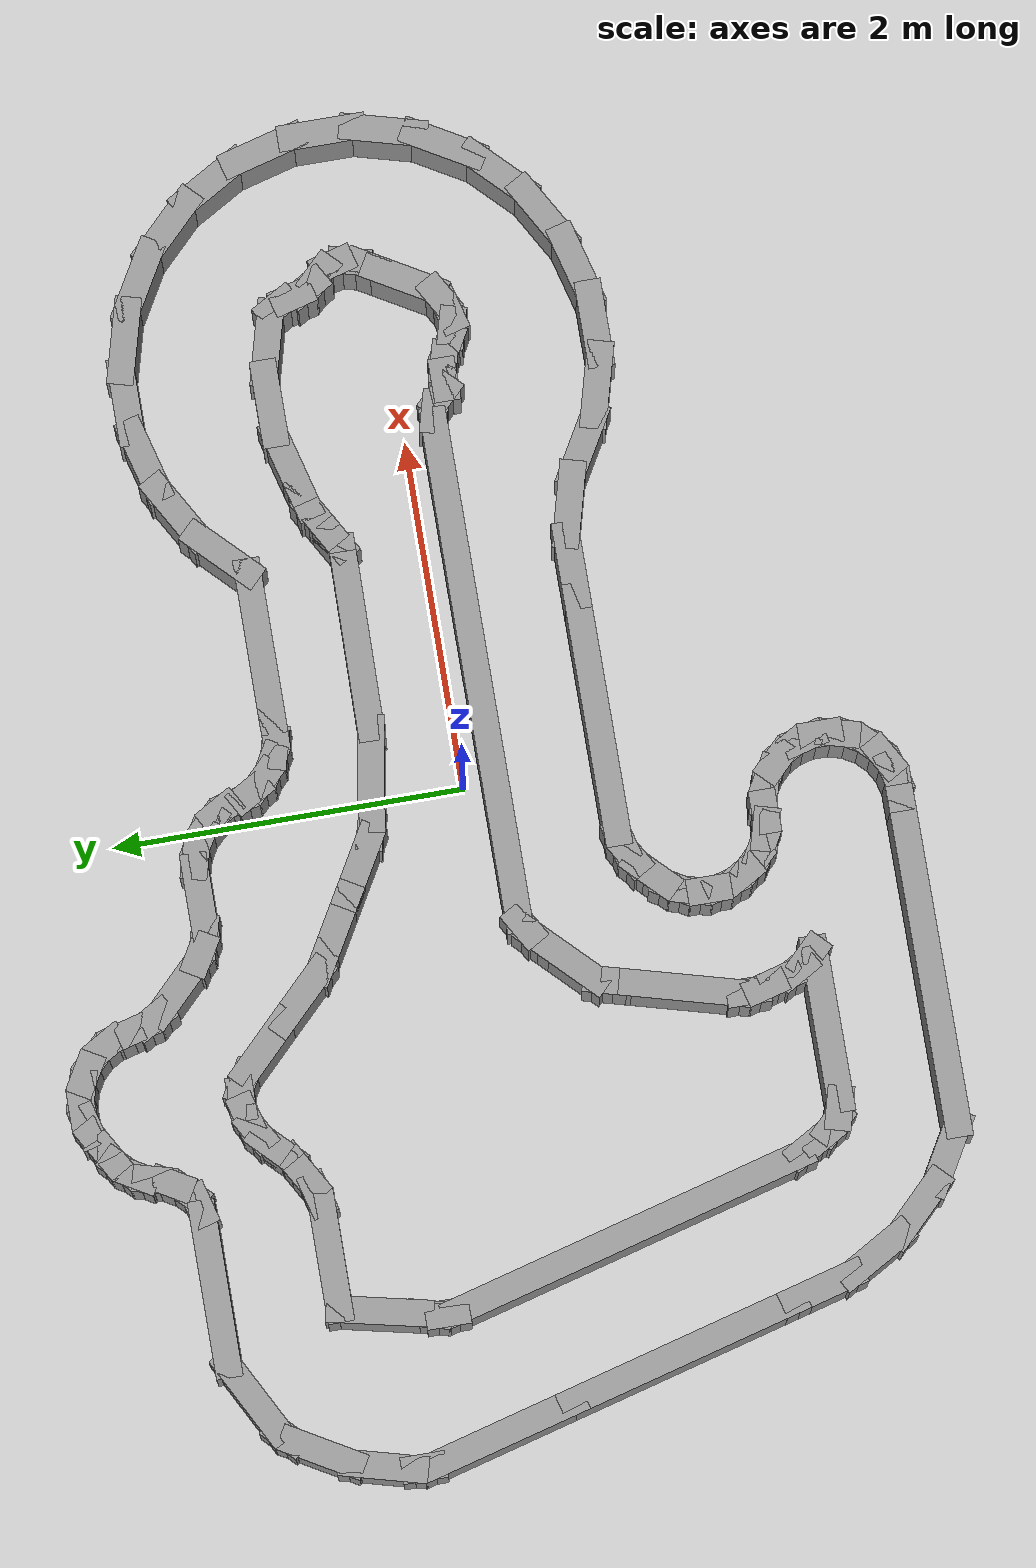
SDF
<?xml version="1.0"?>
<sdf version="1.4">
  <world name="default">
    <include>
      <uri>model://ground_plane</uri>
    </include>
    <include>
      <uri>model://sun</uri>
    </include>

    <physics type="ode">
      <real_time_update_rate>1000.0</real_time_update_rate>
      <max_step_size>0.001</max_step_size>
      <real_time_factor>1</real_time_factor>
      <ode>
        <solver>
          <type>quick</type>
          <iters>150</iters>
          <precon_iters>0</precon_iters>
          <sor>1.400000</sor>
          <use_dynamic_moi_rescaling>1</use_dynamic_moi_rescaling>
        </solver>
        <constraints>
          <cfm>0.00001</cfm>
          <erp>0.2</erp>
          <contact_max_correcting_vel>2000.000000</contact_max_correcting_vel>
          <contact_surface_layer>0.01000</contact_surface_layer>
        </constraints>
      </ode>
    </physics>

    <include>
      <uri>model://small_track1</uri>
    </include>

    <gui fullscreen='0'>
      <camera name='user_camera'>
        <pose>0.0 0.0 17.0 0 1.5708 0</pose>
        <view_controller>orbit</view_controller>
      </camera>
    </gui>
  </world>
</sdf>
